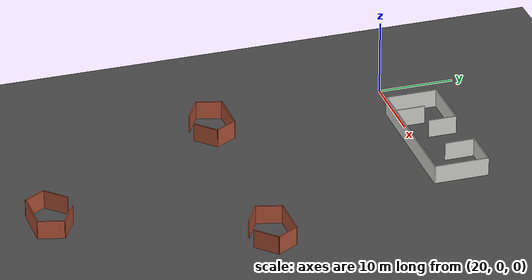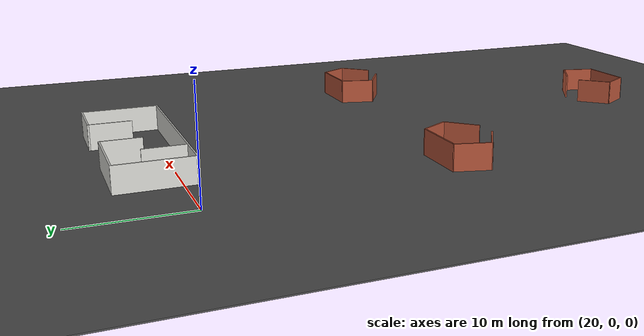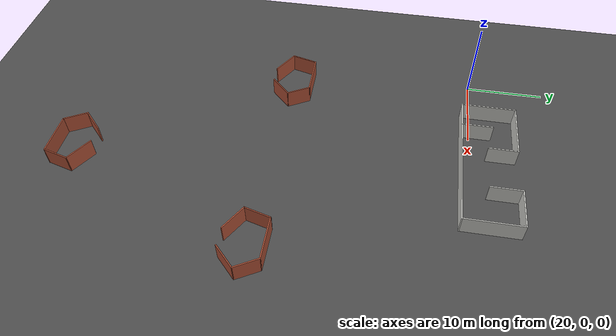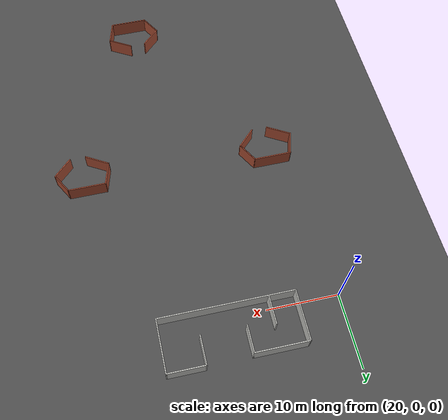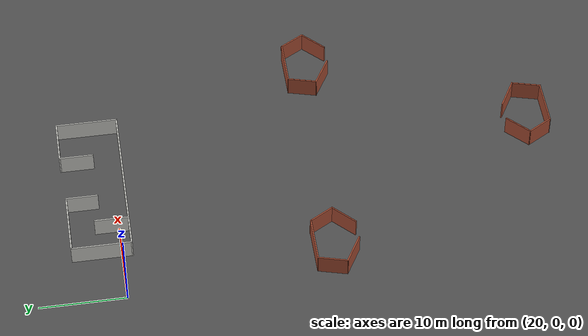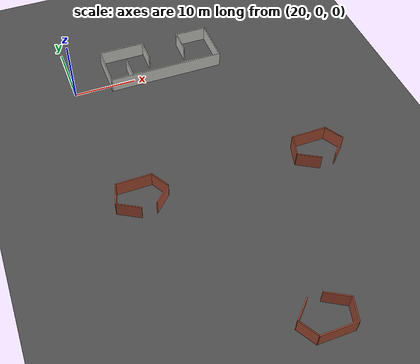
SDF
<sdf version="1.6">
 <world name="default">
  <model name="ground_plane">
   <static>1</static>
   <link name="link">
    <collision name="collision">
     <geometry><plane><normal>0 0 1</normal><size>250 250</size></plane></geometry>
     <surface><friction><ode><mu>100</mu><mu2>50</mu2></ode></friction></surface>
    </collision>
    <visual name="visual">
     <cast_shadows>0</cast_shadows>
     <geometry><plane><normal>0 0 1</normal><size>250 250</size></plane></geometry>
     <material>
      <script><uri>file://media/materials/scripts/gazebo.material</uri><name>Gazebo/Grey</name></script>
     </material>
    </visual>
   </link>
  </model>
  <model name="brick_room1">
   <pose>51.0327 -24.7483 0 0 -0 0</pose>
   <link name="Wall_11">
    <collision name="Wall_11_Collision">
     <geometry><box><size>3.25 0.15 2.5</size></box></geometry>
     <pose>0 0 1.25 0 -0 0</pose>
    </collision>
    <visual name="Wall_11_Visual">
     <pose>0 0 1.25 0 -0 0</pose>
     <geometry><box><size>3.25 0.15 2.5</size></box></geometry>
     <material>
      <script><uri>file://media/materials/scripts/gazebo.material</uri><name>Gazebo/Bricks</name></script>
      <ambient>1 1 1 1</ambient>
     </material>
    </visual>
    <pose>3.12132 1.19483 0 0 0 -1.0472</pose>
   </link>
   <link name="Wall_12">
    <collision name="Wall_12_Collision">
     <geometry><box><size>3.5 0.15 2.5</size></box></geometry>
     <pose>0 0 1.25 0 -0 0</pose>
    </collision>
    <visual name="Wall_12_Visual">
     <pose>0 0 1.25 0 -0 0</pose>
     <geometry><box><size>3.5 0.15 2.5</size></box></geometry>
     <material>
      <script><uri>file://media/materials/scripts/gazebo.material</uri><name>Gazebo/Bricks</name></script>
      <ambient>1 1 1 1</ambient>
     </material>
    </visual>
    <pose>2.71192 -1.33192 0 0 0 -2.35619</pose>
   </link>
   <link name="Wall_7">
    <collision name="Wall_7_Collision">
     <geometry><box><size>5.52935 0.15 2.5</size></box></geometry>
     <pose>0 0 1.25 0 -0 0</pose>
    </collision>
    <visual name="Wall_7_Visual">
     <pose>0 0 1.25 0 -0 0</pose>
     <geometry><box><size>5.52935 0.15 2.5</size></box></geometry>
     <material>
      <script><uri>file://media/materials/scripts/gazebo.material</uri><name>Gazebo/Bricks</name></script>
      <ambient>1 1 1 1</ambient>
     </material>
    </visual>
    <pose>-0.343285 2.51793 0 0 0 -3.13444</pose>
   </link>
   <link name="Wall_8">
    <collision name="Wall_8_Collision">
     <geometry><box><size>3.5 0.15 2.5</size></box></geometry>
     <pose>0 0 1.25 0 -0 0</pose>
    </collision>
    <visual name="Wall_8_Visual">
     <pose>0 0 1.25 0 -0 0</pose>
     <geometry><box><size>3.5 0.15 2.5</size></box></geometry>
     <material>
      <script><uri>file://media/materials/scripts/gazebo.material</uri><name>Gazebo/Bricks</name></script>
      <ambient>1 1 1 1</ambient>
     </material>
    </visual>
    <pose>-3.46641 0.880761 0 0 0 -1.8326</pose>
   </link>
   <link name="Wall_9">
    <collision name="Wall_9_Collision">
     <geometry><box><size>3.75 0.15 2.5</size></box></geometry>
     <pose>0 0 1.25 0 -0 0</pose>
    </collision>
    <visual name="Wall_9_Visual">
     <pose>0 0 1.25 0 -0 0</pose>
     <geometry><box><size>3.75 0.15 2.5</size></box></geometry>
     <material>
      <script><uri>file://media/materials/scripts/gazebo.material</uri><name>Gazebo/Bricks</name></script>
      <ambient>1 1 1 1</ambient>
     </material>
    </visual>
    <pose>-2.34109 -1.63716 0 0 0 -0.523599</pose>
   </link>
   <static>1</static>
  </model>
  <model name="brick_room1_clone">
   <pose>23.7177 -24.224 0 0 -0 0</pose>
   <link name="Wall_11">
    <collision name="Wall_11_Collision">
     <geometry><box><size>3.25 0.15 2.5</size></box></geometry>
     <pose>0 0 1.25 0 -0 0</pose>
    </collision>
    <visual name="Wall_11_Visual">
     <pose>0 0 1.25 0 -0 0</pose>
     <geometry><box><size>3.25 0.15 2.5</size></box></geometry>
     <material>
      <script><uri>file://media/materials/scripts/gazebo.material</uri><name>Gazebo/Bricks</name></script>
      <ambient>1 1 1 1</ambient>
     </material>
    </visual>
    <pose>3.12132 1.19483 0 0 0 -1.0472</pose>
   </link>
   <link name="Wall_12">
    <collision name="Wall_12_Collision">
     <geometry><box><size>3.5 0.15 2.5</size></box></geometry>
     <pose>0 0 1.25 0 -0 0</pose>
    </collision>
    <visual name="Wall_12_Visual">
     <pose>0 0 1.25 0 -0 0</pose>
     <geometry><box><size>3.5 0.15 2.5</size></box></geometry>
     <material>
      <script><uri>file://media/materials/scripts/gazebo.material</uri><name>Gazebo/Bricks</name></script>
      <ambient>1 1 1 1</ambient>
     </material>
    </visual>
    <pose>2.71192 -1.33192 0 0 0 -2.35619</pose>
   </link>
   <link name="Wall_7">
    <collision name="Wall_7_Collision">
     <geometry><box><size>5.52935 0.15 2.5</size></box></geometry>
     <pose>0 0 1.25 0 -0 0</pose>
    </collision>
    <visual name="Wall_7_Visual">
     <pose>0 0 1.25 0 -0 0</pose>
     <geometry><box><size>5.52935 0.15 2.5</size></box></geometry>
     <material>
      <script><uri>file://media/materials/scripts/gazebo.material</uri><name>Gazebo/Bricks</name></script>
      <ambient>1 1 1 1</ambient>
     </material>
    </visual>
    <pose>-0.343285 2.51793 0 0 0 -3.13444</pose>
   </link>
   <link name="Wall_8">
    <collision name="Wall_8_Collision">
     <geometry><box><size>3.5 0.15 2.5</size></box></geometry>
     <pose>0 0 1.25 0 -0 0</pose>
    </collision>
    <visual name="Wall_8_Visual">
     <pose>0 0 1.25 0 -0 0</pose>
     <geometry><box><size>3.5 0.15 2.5</size></box></geometry>
     <material>
      <script><uri>file://media/materials/scripts/gazebo.material</uri><name>Gazebo/Bricks</name></script>
      <ambient>1 1 1 1</ambient>
     </material>
    </visual>
    <pose>-3.46641 0.880761 0 0 0 -1.8326</pose>
   </link>
   <link name="Wall_9">
    <collision name="Wall_9_Collision">
     <geometry><box><size>3.75 0.15 2.5</size></box></geometry>
     <pose>0 0 1.25 0 -0 0</pose>
    </collision>
    <visual name="Wall_9_Visual">
     <pose>0 0 1.25 0 -0 0</pose>
     <geometry><box><size>3.75 0.15 2.5</size></box></geometry>
     <material>
      <script><uri>file://media/materials/scripts/gazebo.material</uri><name>Gazebo/Bricks</name></script>
      <ambient>1 1 1 1</ambient>
     </material>
    </visual>
    <pose>-2.34109 -1.63716 0 0 0 -0.523599</pose>
   </link>
   <static>1</static>
  </model>
  <model name="brick_room1_clone_clone">
   <pose>39.6022 -49.4584 0 0 0 -3.13849</pose>
   <link name="Wall_11">
    <collision name="Wall_11_Collision">
     <geometry><box><size>3.25 0.15 2.5</size></box></geometry>
     <pose>0 0 1.25 0 -0 0</pose>
    </collision>
    <visual name="Wall_11_Visual">
     <pose>0 0 1.25 0 -0 0</pose>
     <geometry><box><size>3.25 0.15 2.5</size></box></geometry>
     <material>
      <script><uri>file://media/materials/scripts/gazebo.material</uri><name>Gazebo/Bricks</name></script>
      <ambient>1 1 1 1</ambient>
     </material>
    </visual>
    <pose>3.12132 1.19483 0 0 0 -1.0472</pose>
   </link>
   <link name="Wall_12">
    <collision name="Wall_12_Collision">
     <geometry><box><size>3.5 0.15 2.5</size></box></geometry>
     <pose>0 0 1.25 0 -0 0</pose>
    </collision>
    <visual name="Wall_12_Visual">
     <pose>0 0 1.25 0 -0 0</pose>
     <geometry><box><size>3.5 0.15 2.5</size></box></geometry>
     <material>
      <script><uri>file://media/materials/scripts/gazebo.material</uri><name>Gazebo/Bricks</name></script>
      <ambient>1 1 1 1</ambient>
     </material>
    </visual>
    <pose>2.71192 -1.33192 0 0 0 -2.35619</pose>
   </link>
   <link name="Wall_7">
    <collision name="Wall_7_Collision">
     <geometry><box><size>5.52935 0.15 2.5</size></box></geometry>
     <pose>0 0 1.25 0 -0 0</pose>
    </collision>
    <visual name="Wall_7_Visual">
     <pose>0 0 1.25 0 -0 0</pose>
     <geometry><box><size>5.52935 0.15 2.5</size></box></geometry>
     <material>
      <script><uri>file://media/materials/scripts/gazebo.material</uri><name>Gazebo/Bricks</name></script>
      <ambient>1 1 1 1</ambient>
     </material>
    </visual>
    <pose>-0.343285 2.51793 0 0 0 -3.13444</pose>
   </link>
   <link name="Wall_8">
    <collision name="Wall_8_Collision">
     <geometry><box><size>3.5 0.15 2.5</size></box></geometry>
     <pose>0 0 1.25 0 -0 0</pose>
    </collision>
    <visual name="Wall_8_Visual">
     <pose>0 0 1.25 0 -0 0</pose>
     <geometry><box><size>3.5 0.15 2.5</size></box></geometry>
     <material>
      <script><uri>file://media/materials/scripts/gazebo.material</uri><name>Gazebo/Bricks</name></script>
      <ambient>1 1 1 1</ambient>
     </material>
    </visual>
    <pose>-3.46641 0.880761 0 0 0 -1.8326</pose>
   </link>
   <link name="Wall_9">
    <collision name="Wall_9_Collision">
     <geometry><box><size>3.75 0.15 2.5</size></box></geometry>
     <pose>0 0 1.25 0 -0 0</pose>
    </collision>
    <visual name="Wall_9_Visual">
     <pose>0 0 1.25 0 -0 0</pose>
     <geometry><box><size>3.75 0.15 2.5</size></box></geometry>
     <material>
      <script><uri>file://media/materials/scripts/gazebo.material</uri><name>Gazebo/Bricks</name></script>
      <ambient>1 1 1 1</ambient>
     </material>
    </visual>
    <pose>-2.34109 -1.63716 0 0 0 -0.523599</pose>
   </link>
   <static>1</static>
  </model>
  <model name="concrete_room2_2">
   <pose>35.246 2.40553 0 0 -0 0</pose>
   <link name="Wall_61">
    <collision name="Wall_61_Collision">
     <geometry><box><size>5.25 0.15 2.5</size></box></geometry>
     <pose>0 0 1.25 0 -0 0</pose>
    </collision>
    <visual name="Wall_61_Visual">
     <pose>0 0 1.25 0 -0 0</pose>
     <geometry><box><size>5.25 0.15 2.5</size></box></geometry>
     <material>
      <script><uri>file://media/materials/scripts/gazebo.material</uri><name>Gazebo/CeilingTiled</name></script>
      <ambient>1 1 1 1</ambient>
     </material>
     <meta><layer>0</layer></meta>
    </visual>
    <pose>6.75 3.55 0 0 -0 0</pose>
   </link>
   <link name="Wall_62">
    <collision name="Wall_62_Collision">
     <geometry><box><size>7.25 0.15 2.5</size></box></geometry>
     <pose>0 0 1.25 0 -0 0</pose>
    </collision>
    <visual name="Wall_62_Visual">
     <pose>0 0 1.25 0 -0 0</pose>
     <geometry><box><size>7.25 0.15 2.5</size></box></geometry>
     <material>
      <script><uri>file://media/materials/scripts/gazebo.material</uri><name>Gazebo/CeilingTiled</name></script>
      <ambient>1 1 1 1</ambient>
     </material>
     <meta><layer>0</layer></meta>
    </visual>
    <pose>9.3 0 0 0 0 -1.5708</pose>
   </link>
   <link name="Wall_63">
    <collision name="Wall_63_Collision">
     <geometry><box><size>18.75 0.15 2.5</size></box></geometry>
     <pose>0 0 1.25 0 -0 0</pose>
    </collision>
    <visual name="Wall_63_Visual">
     <pose>0 0 1.25 0 -0 0</pose>
     <geometry><box><size>18.75 0.15 2.5</size></box></geometry>
     <material>
      <script><uri>file://media/materials/scripts/gazebo.material</uri><name>Gazebo/CeilingTiled</name></script>
      <ambient>1 1 1 1</ambient>
     </material>
     <meta><layer>0</layer></meta>
    </visual>
    <pose>0 -3.55 0 0 -0 3.14159</pose>
   </link>
   <link name="Wall_64">
    <collision name="Wall_64_Collision">
     <geometry><box><size>7 0.15 2.5</size></box></geometry>
     <pose>0 0 1.25 0 -0 0</pose>
    </collision>
    <visual name="Wall_64_Visual">
     <pose>0 0 1.25 0 -0 0</pose>
     <geometry><box><size>7 0.15 2.5</size></box></geometry>
     <material>
      <script><uri>file://media/materials/scripts/gazebo.material</uri><name>Gazebo/CeilingTiled</name></script>
      <ambient>1 1 1 1</ambient>
     </material>
     <meta><layer>0</layer></meta>
    </visual>
    <pose>-9.3 -0.125 0 0 -0 1.5708</pose>
   </link>
   <link name="Wall_65">
    <collision name="Wall_65_Collision">
     <geometry><box><size>7.5 0.15 2.5</size></box></geometry>
     <pose>0 0 1.25 0 -0 0</pose>
    </collision>
    <visual name="Wall_65_Visual">
     <pose>0 0 1.25 0 -0 0</pose>
     <geometry><box><size>7.5 0.15 2.5</size></box></geometry>
     <material>
      <script><uri>file://media/materials/scripts/gazebo.material</uri><name>Gazebo/CeilingTiled</name></script>
      <ambient>1 1 1 1</ambient>
     </material>
     <meta><layer>0</layer></meta>
    </visual>
    <pose>-5.625 3.3 0 0 -0 0</pose>
   </link>
   <link name="Wall_66">
    <collision name="Wall_66_Collision">
     <geometry><box><size>3.75 0.15 2.5</size></box></geometry>
     <pose>0 0 1.25 0 -0 0</pose>
    </collision>
    <visual name="Wall_66_Visual">
     <pose>0 0 1.25 0 -0 0</pose>
     <geometry><box><size>3.75 0.15 2.5</size></box></geometry>
     <material>
      <script><uri>file://media/materials/scripts/gazebo.material</uri><name>Gazebo/CeilingTiled</name></script>
      <ambient>1 1 1 1</ambient>
     </material>
     <meta><layer>0</layer></meta>
    </visual>
    <pose>-1.95 1.5 0 0 0 -1.5708</pose>
   </link>
   <link name="Wall_70">
    <collision name="Wall_70_Collision">
     <geometry><box><size>4 0.15 2.5</size></box></geometry>
     <pose>0 0 1.25 0 -0 0</pose>
    </collision>
    <visual name="Wall_70_Visual">
     <pose>0 0 1.25 0 -0 0</pose>
     <geometry><box><size>4 0.15 2.5</size></box></geometry>
     <material>
      <script><uri>file://media/materials/scripts/gazebo.material</uri><name>Gazebo/CeilingTiled</name></script>
      <ambient>1 1 1 1</ambient>
     </material>
     <meta><layer>0</layer></meta>
    </visual>
    <pose>4.2 1.625 0 0 0 -1.5708</pose>
   </link>
   <link name="Wall_72">
    <collision name="Wall_72_Collision">
     <geometry><box><size>4 0.15 2.5</size></box></geometry>
     <pose>0 0 1.25 0 -0 0</pose>
    </collision>
    <visual name="Wall_72_Visual">
     <pose>0 0 1.25 0 -0 0</pose>
     <geometry><box><size>4 0.15 2.5</size></box></geometry>
     <material>
      <script><uri>file://media/materials/scripts/gazebo.material</uri><name>Gazebo/CeilingTiled</name></script>
      <ambient>1 1 1 1</ambient>
     </material>
     <meta><layer>0</layer></meta>
    </visual>
    <pose>-5.65005 -1.59593 0 0 -0 1.5708</pose>
   </link>
   <static>1</static>
  </model>
  <model name="asphalt_plane">
   <static>1</static>
   <link name="link">
    <collision name="collision"><geometry><box><size>250 250 0.1</size></box></geometry></collision>
    <visual name="visual">
     <cast_shadows>0</cast_shadows>
     <geometry><box><size>250 250 0.1</size></box></geometry>
     <material>
      <script>
       <uri>model://asphalt_plane/materials/scripts</uri>
       <uri>model://asphalt_plane/materials/textures</uri>
       <name>vrc/asphalt</name>
      </script>
     </material>
    </visual>
   </link>
   <pose>15.141 -2.59476 0 0 -0 0</pose>
  </model>
 </world>
</sdf>
